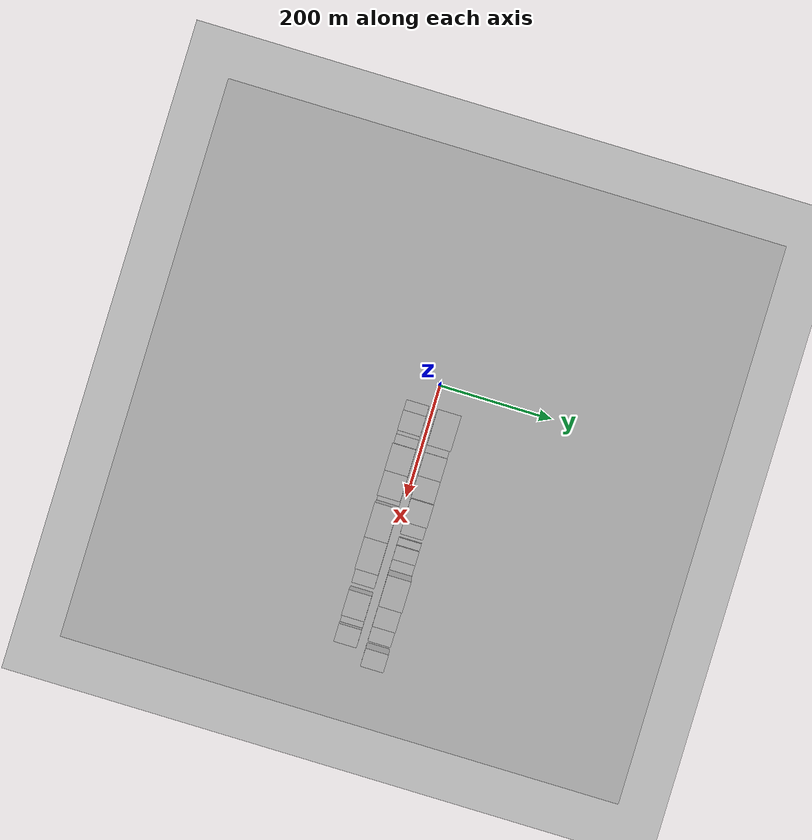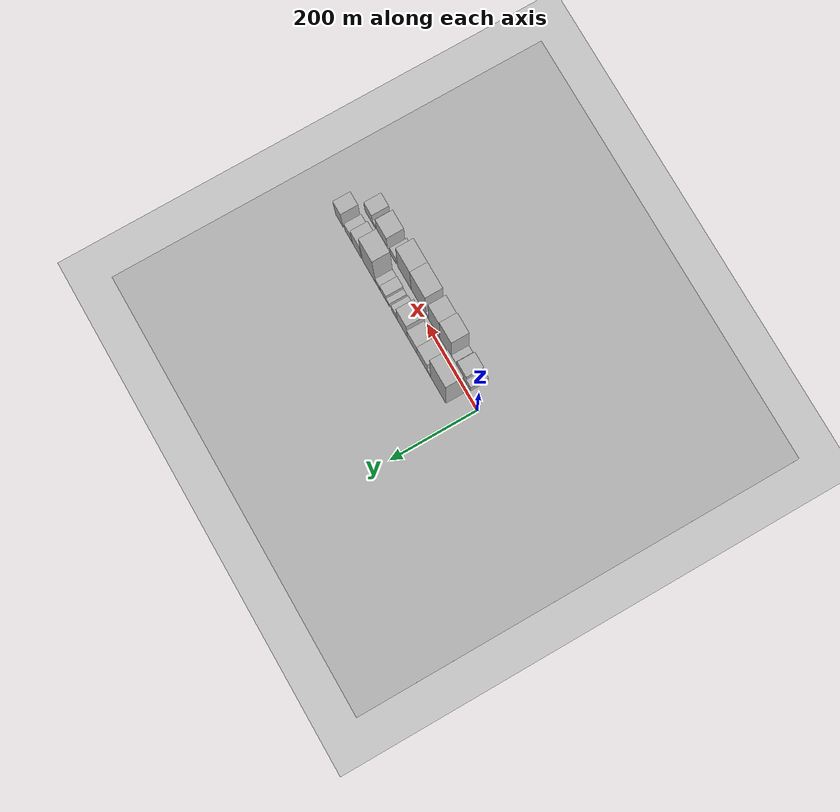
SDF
<?xml version="1.0" encoding="utf-8"?>

<sdf version="1.6">

   <world name="default">

      <gui fullscreen="0">

         <camera name="user_camera">

            <pose>-15 0 4.57585 0 0 0</pose>

            <view_controller>orbit</view_controller>

         </camera>

      </gui>

      <scene>

         <sky>

           <clouds>

             <speed>12</speed>

           </clouds>

         </sky>

         <ambient>0.4 0.4 0.4 1</ambient>

         <background>0.7 0.7 0.7 1</background>

         <shadows>1</shadows>

      </scene>

      <gravity>0 0 -9.8066</gravity>

      <magnetic_field>6e-06 2.3e-05 -4.2e-05</magnetic_field>

      <physics default="0" name="default_physics" type="ode">

         <ode>

            <solver>

               <type>quick</type>

               <iters>10</iters>

               <sor>1.0</sor>

               <use_dynamic_moi_rescaling>0</use_dynamic_moi_rescaling>

            </solver>

            <constraints>

               <cfm>0</cfm>

               <erp>0.2</erp>

               <contact_max_correcting_vel>100</contact_max_correcting_vel>

               <contact_surface_layer>0.001</contact_surface_layer>

            </constraints>

         </ode>

         <max_step_size>0.004</max_step_size>

         <real_time_factor>1</real_time_factor>

         <real_time_update_rate>250</real_time_update_rate>

      </physics>

      <light name="sun" type="directional">

         <cast_shadows>1</cast_shadows>

         <pose>0 0 10 0 0 0</pose>

         <diffuse>0.8 0.8 0.8 1</diffuse>

         <specular>0.2 0.2 0.2 1</specular>

         <attenuation>

            <range>1000</range>

            <constant>0.9</constant>

            <linear>0.01</linear>

            <quadratic>0.001</quadratic>

         </attenuation>

         <direction>-0.5 0.1 -0.9</direction>

      </light>

      <include>

         <name>ground_plane_1</name>

         <uri>model://HANNAS_ground_plane</uri>

         <pose>0 0 0  0 0 0</pose>

      </include>

      <include>

         <name>ground_plane_2</name>

         <uri>model://HANNAS_ground_plane</uri>

         <pose>100 0 0  0 0 0</pose>

      </include>

      <model name="building_1">

         <static>1</static>

         <pose frame="">73.2922 27.5000 0 0.000000 0.000000 1.570796</pose>

         <link name="link">

            <pose frame="">0 0 91.50 0 0 0</pose>

            <collision name="collision">

               <geometry>

                  <box>

                     <size>40.0000 60.5845 183.0000</size>

                  </box>

               </geometry>

               <max_contacts>10</max_contacts>

               <surface>

                  <contact>

                     <ode/>

                  </contact>

                  <bounce/>

                  <friction>

                     <torsional>

                        <ode/>

                     </torsional>

                     <ode/>

                  </friction>

               </surface>

            </collision>

            <visual name="visual">

               <cast_shadows>0</cast_shadows>

               <geometry>

                  <box>

                     <size>40.0000 60.5845 183.0000</size>

                  </box>

               </geometry>

               <material>

                  <script>

                     <uri>model://HANNAS_wall/materials/scripts</uri>

                     <uri>model://HANNAS_wall/materials/textures</uri>

                     <name>vrc/HANNAS_wall</name>

                  </script>

               </material>

            </visual>

            <self_collide>0</self_collide>

            <enable_wind>0</enable_wind>

            <kinematic>0</kinematic>

         </link>

      </model>

      <model name="building_2">

         <static>1</static>

         <pose frame="">110.1360 27.5000 0 0.000000 0.000000 1.570796</pose>

         <link name="link">

            <pose frame="">0 0 13.50 0 0 0</pose>

            <collision name="collision">

               <geometry>

                  <box>

                     <size>40.0000 13.1030 27.0000</size>

                  </box>

               </geometry>

               <max_contacts>10</max_contacts>

               <surface>

                  <contact>

                     <ode/>

                  </contact>

                  <bounce/>

                  <friction>

                     <torsional>

                        <ode/>

                     </torsional>

                     <ode/>

                  </friction>

               </surface>

            </collision>

            <visual name="visual">

               <cast_shadows>0</cast_shadows>

               <geometry>

                  <box>

                     <size>40.0000 13.1030 27.0000</size>

                  </box>

               </geometry>

               <material>

                  <script>

                     <uri>model://HANNAS_wall/materials/scripts</uri>

                     <uri>model://HANNAS_wall/materials/textures</uri>

                     <name>vrc/HANNAS_wall</name>

                  </script>

               </material>

            </visual>

            <self_collide>0</self_collide>

            <enable_wind>0</enable_wind>

            <kinematic>0</kinematic>

         </link>

      </model>

      <model name="building_3">

         <static>1</static>

         <pose frame="">137.1209 27.5000 0 0.000000 0.000000 1.570796</pose>

         <link name="link">

            <pose frame="">0 0 34.50 0 0 0</pose>

            <collision name="collision">

               <geometry>

                  <box>

                     <size>40.0000 40.8669 69.0000</size>

                  </box>

               </geometry>

               <max_contacts>10</max_contacts>

               <surface>

                  <contact>

                     <ode/>

                  </contact>

                  <bounce/>

                  <friction>

                     <torsional>

                        <ode/>

                     </torsional>

                     <ode/>

                  </friction>

               </surface>

            </collision>

            <visual name="visual">

               <cast_shadows>0</cast_shadows>

               <geometry>

                  <box>

                     <size>40.0000 40.8669 69.0000</size>

                  </box>

               </geometry>

               <material>

                  <script>

                     <uri>model://HANNAS_wall/materials/scripts</uri>

                     <uri>model://HANNAS_wall/materials/textures</uri>

                     <name>vrc/HANNAS_wall</name>

                  </script>

               </material>

            </visual>

            <self_collide>0</self_collide>

            <enable_wind>0</enable_wind>

            <kinematic>0</kinematic>

         </link>

      </model>

      <model name="building_4">

         <static>1</static>

         <pose frame="">177.1733 27.5000 0 0.000000 0.000000 1.570796</pose>

         <link name="link">

            <pose frame="">0 0 33.00 0 0 0</pose>

            <collision name="collision">

               <geometry>

                  <box>

                     <size>40.0000 39.2379 66.0000</size>

                  </box>

               </geometry>

               <max_contacts>10</max_contacts>

               <surface>

                  <contact>

                     <ode/>

                  </contact>

                  <bounce/>

                  <friction>

                     <torsional>

                        <ode/>

                     </torsional>

                     <ode/>

                  </friction>

               </surface>

            </collision>

            <visual name="visual">

               <cast_shadows>0</cast_shadows>

               <geometry>

                  <box>

                     <size>40.0000 39.2379 66.0000</size>

                  </box>

               </geometry>

               <material>

                  <script>

                     <uri>model://HANNAS_wall/materials/scripts</uri>

                     <uri>model://HANNAS_wall/materials/textures</uri>

                     <name>vrc/HANNAS_wall</name>

                  </script>

               </material>

            </visual>

            <self_collide>0</self_collide>

            <enable_wind>0</enable_wind>

            <kinematic>0</kinematic>

         </link>

      </model>

      <model name="building_5">

         <static>1</static>

         <pose frame="">217.0349 27.5000 0 0.000000 0.000000 1.570796</pose>

         <link name="link">

            <pose frame="">0 0 51.00 0 0 0</pose>

            <collision name="collision">

               <geometry>

                  <box>

                     <size>40.0000 40.4852 102.0000</size>

                  </box>

               </geometry>

               <max_contacts>10</max_contacts>

               <surface>

                  <contact>

                     <ode/>

                  </contact>

                  <bounce/>

                  <friction>

                     <torsional>

                        <ode/>

                     </torsional>

                     <ode/>

                  </friction>

               </surface>

            </collision>

            <visual name="visual">

               <cast_shadows>0</cast_shadows>

               <geometry>

                  <box>

                     <size>40.0000 40.4852 102.0000</size>

                  </box>

               </geometry>

               <material>

                  <script>

                     <uri>model://HANNAS_wall/materials/scripts</uri>

                     <uri>model://HANNAS_wall/materials/textures</uri>

                     <name>vrc/HANNAS_wall</name>

                  </script>

               </material>

            </visual>

            <self_collide>0</self_collide>

            <enable_wind>0</enable_wind>

            <kinematic>0</kinematic>

         </link>

      </model>

      <model name="building_6">

         <static>1</static>

         <pose frame="">249.2175 27.5000 0 0.000000 0.000000 1.570796</pose>

         <link name="link">

            <pose frame="">0 0 21.00 0 0 0</pose>

            <collision name="collision">

               <geometry>

                  <box>

                     <size>40.0000 23.8801 42.0000</size>

                  </box>

               </geometry>

               <max_contacts>10</max_contacts>

               <surface>

                  <contact>

                     <ode/>

                  </contact>

                  <bounce/>

                  <friction>

                     <torsional>

                        <ode/>

                     </torsional>

                     <ode/>

                  </friction>

               </surface>

            </collision>

            <visual name="visual">

               <cast_shadows>0</cast_shadows>

               <geometry>

                  <box>

                     <size>40.0000 23.8801 42.0000</size>

                  </box>

               </geometry>

               <material>

                  <script>

                     <uri>model://HANNAS_wall/materials/scripts</uri>

                     <uri>model://HANNAS_wall/materials/textures</uri>

                     <name>vrc/HANNAS_wall</name>

                  </script>

               </material>

            </visual>

            <self_collide>0</self_collide>

            <enable_wind>0</enable_wind>

            <kinematic>0</kinematic>

         </link>

      </model>

      <model name="building_7">

         <static>1</static>

         <pose frame="">274.6905 27.5000 0 0.000000 0.000000 1.570796</pose>

         <link name="link">

            <pose frame="">0 0 13.50 0 0 0</pose>

            <collision name="collision">

               <geometry>

                  <box>

                     <size>40.0000 13.0658 27.0000</size>

                  </box>

               </geometry>

               <max_contacts>10</max_contacts>

               <surface>

                  <contact>

                     <ode/>

                  </contact>

                  <bounce/>

                  <friction>

                     <torsional>

                        <ode/>

                     </torsional>

                     <ode/>

                  </friction>

               </surface>

            </collision>

            <visual name="visual">

               <cast_shadows>0</cast_shadows>

               <geometry>

                  <box>

                     <size>40.0000 13.0658 27.0000</size>

                  </box>

               </geometry>

               <material>

                  <script>

                     <uri>model://HANNAS_wall/materials/scripts</uri>

                     <uri>model://HANNAS_wall/materials/textures</uri>

                     <name>vrc/HANNAS_wall</name>

                  </script>

               </material>

            </visual>

            <self_collide>0</self_collide>

            <enable_wind>0</enable_wind>

            <kinematic>0</kinematic>

         </link>

      </model>

      <model name="building_8">

         <static>1</static>

         <pose frame="">293.6197 27.5000 0 0.000000 0.000000 1.570796</pose>

         <link name="link">

            <pose frame="">0 0 22.50 0 0 0</pose>

            <collision name="collision">

               <geometry>

                  <box>

                     <size>40.0000 24.7926 45.0000</size>

                  </box>

               </geometry>

               <max_contacts>10</max_contacts>

               <surface>

                  <contact>

                     <ode/>

                  </contact>

                  <bounce/>

                  <friction>

                     <torsional>

                        <ode/>

                     </torsional>

                     <ode/>

                  </friction>

               </surface>

            </collision>

            <visual name="visual">

               <cast_shadows>0</cast_shadows>

               <geometry>

                  <box>

                     <size>40.0000 24.7926 45.0000</size>

                  </box>

               </geometry>

               <material>

                  <script>

                     <uri>model://HANNAS_wall/materials/scripts</uri>

                     <uri>model://HANNAS_wall/materials/textures</uri>

                     <name>vrc/HANNAS_wall</name>

                  </script>

               </material>

            </visual>

            <self_collide>0</self_collide>

            <enable_wind>0</enable_wind>

            <kinematic>0</kinematic>

         </link>

      </model>

      <model name="building_9">

         <static>1</static>

         <pose frame="">315.5268 27.5000 0 0.000000 0.000000 1.570796</pose>

         <link name="link">

            <pose frame="">0 0 18.00 0 0 0</pose>

            <collision name="collision">

               <geometry>

                  <box>

                     <size>40.0000 19.0216 36.0000</size>

                  </box>

               </geometry>

               <max_contacts>10</max_contacts>

               <surface>

                  <contact>

                     <ode/>

                  </contact>

                  <bounce/>

                  <friction>

                     <torsional>

                        <ode/>

                     </torsional>

                     <ode/>

                  </friction>

               </surface>

            </collision>

            <visual name="visual">

               <cast_shadows>0</cast_shadows>

               <geometry>

                  <box>

                     <size>40.0000 19.0216 36.0000</size>

                  </box>

               </geometry>

               <material>

                  <script>

                     <uri>model://HANNAS_wall/materials/scripts</uri>

                     <uri>model://HANNAS_wall/materials/textures</uri>

                     <name>vrc/HANNAS_wall</name>

                  </script>

               </material>

            </visual>

            <self_collide>0</self_collide>

            <enable_wind>0</enable_wind>

            <kinematic>0</kinematic>

         </link>

      </model>

      <model name="building_10">

         <static>1</static>

         <pose frame="">351.4854 27.5000 0 0.000000 0.000000 1.570796</pose>

         <link name="link">

            <pose frame="">0 0 87.00 0 0 0</pose>

            <collision name="collision">

               <geometry>

                  <box>

                     <size>40.0000 52.8956 174.0000</size>

                  </box>

               </geometry>

               <max_contacts>10</max_contacts>

               <surface>

                  <contact>

                     <ode/>

                  </contact>

                  <bounce/>

                  <friction>

                     <torsional>

                        <ode/>

                     </torsional>

                     <ode/>

                  </friction>

               </surface>

            </collision>

            <visual name="visual">

               <cast_shadows>0</cast_shadows>

               <geometry>

                  <box>

                     <size>40.0000 52.8956 174.0000</size>

                  </box>

               </geometry>

               <material>

                  <script>

                     <uri>model://HANNAS_wall/materials/scripts</uri>

                     <uri>model://HANNAS_wall/materials/textures</uri>

                     <name>vrc/HANNAS_wall</name>

                  </script>

               </material>

            </visual>

            <self_collide>0</self_collide>

            <enable_wind>0</enable_wind>

            <kinematic>0</kinematic>

         </link>

      </model>

      <model name="building_11">

         <static>1</static>

         <pose frame="">401.3773 27.5000 0 0.000000 0.000000 1.570796</pose>

         <link name="link">

            <pose frame="">0 0 48.00 0 0 0</pose>

            <collision name="collision">

               <geometry>

                  <box>

                     <size>40.0000 36.8881 96.0000</size>

                  </box>

               </geometry>

               <max_contacts>10</max_contacts>

               <surface>

                  <contact>

                     <ode/>

                  </contact>

                  <bounce/>

                  <friction>

                     <torsional>

                        <ode/>

                     </torsional>

                     <ode/>

                  </friction>

               </surface>

            </collision>

            <visual name="visual">

               <cast_shadows>0</cast_shadows>

               <geometry>

                  <box>

                     <size>40.0000 36.8881 96.0000</size>

                  </box>

               </geometry>

               <material>

                  <script>

                     <uri>model://HANNAS_wall/materials/scripts</uri>

                     <uri>model://HANNAS_wall/materials/textures</uri>

                     <name>vrc/HANNAS_wall</name>

                  </script>

               </material>

            </visual>

            <self_collide>0</self_collide>

            <enable_wind>0</enable_wind>

            <kinematic>0</kinematic>

         </link>

      </model>

      <model name="building_12">

         <static>1</static>

         <pose frame="">434.8382 27.5000 0 0.000000 0.000000 1.570796</pose>

         <link name="link">

            <pose frame="">0 0 27.00 0 0 0</pose>

            <collision name="collision">

               <geometry>

                  <box>

                     <size>40.0000 30.0337 54.0000</size>

                  </box>

               </geometry>

               <max_contacts>10</max_contacts>

               <surface>

                  <contact>

                     <ode/>

                  </contact>

                  <bounce/>

                  <friction>

                     <torsional>

                        <ode/>

                     </torsional>

                     <ode/>

                  </friction>

               </surface>

            </collision>

            <visual name="visual">

               <cast_shadows>0</cast_shadows>

               <geometry>

                  <box>

                     <size>40.0000 30.0337 54.0000</size>

                  </box>

               </geometry>

               <material>

                  <script>

                     <uri>model://HANNAS_wall/materials/scripts</uri>

                     <uri>model://HANNAS_wall/materials/textures</uri>

                     <name>vrc/HANNAS_wall</name>

                  </script>

               </material>

            </visual>

            <self_collide>0</self_collide>

            <enable_wind>0</enable_wind>

            <kinematic>0</kinematic>

         </link>

      </model>

      <model name="building_13">

         <static>1</static>

         <pose frame="">473.5929 27.5000 0 0.000000 0.000000 1.570796</pose>

         <link name="link">

            <pose frame="">0 0 48.00 0 0 0</pose>

            <collision name="collision">

               <geometry>

                  <box>

                     <size>40.0000 31.4758 96.0000</size>

                  </box>

               </geometry>

               <max_contacts>10</max_contacts>

               <surface>

                  <contact>

                     <ode/>

                  </contact>

                  <bounce/>

                  <friction>

                     <torsional>

                        <ode/>

                     </torsional>

                     <ode/>

                  </friction>

               </surface>

            </collision>

            <visual name="visual">

               <cast_shadows>0</cast_shadows>

               <geometry>

                  <box>

                     <size>40.0000 31.4758 96.0000</size>

                  </box>

               </geometry>

               <material>

                  <script>

                     <uri>model://HANNAS_wall/materials/scripts</uri>

                     <uri>model://HANNAS_wall/materials/textures</uri>

                     <name>vrc/HANNAS_wall</name>

                  </script>

               </material>

            </visual>

            <self_collide>0</self_collide>

            <enable_wind>0</enable_wind>

            <kinematic>0</kinematic>

         </link>

      </model>

      <model name="building_14">

         <static>1</static>

         <pose frame="">49.3180 -27.5000 0 0.000000 0.000000 1.570796</pose>

         <link name="link">

            <pose frame="">0 0 18.00 0 0 0</pose>

            <collision name="collision">

               <geometry>

                  <box>

                     <size>40.0000 18.6360 36.0000</size>

                  </box>

               </geometry>

               <max_contacts>10</max_contacts>

               <surface>

                  <contact>

                     <ode/>

                  </contact>

                  <bounce/>

                  <friction>

                     <torsional>

                        <ode/>

                     </torsional>

                     <ode/>

                  </friction>

               </surface>

            </collision>

            <visual name="visual">

               <cast_shadows>0</cast_shadows>

               <geometry>

                  <box>

                     <size>40.0000 18.6360 36.0000</size>

                  </box>

               </geometry>

               <material>

                  <script>

                     <uri>model://HANNAS_wall/materials/scripts</uri>

                     <uri>model://HANNAS_wall/materials/textures</uri>

                     <name>vrc/HANNAS_wall</name>

                  </script>

               </material>

            </visual>

            <self_collide>0</self_collide>

            <enable_wind>0</enable_wind>

            <kinematic>0</kinematic>

         </link>

      </model>

      <model name="building_15">

         <static>1</static>

         <pose frame="">76.4230 -27.5000 0 0.000000 0.000000 1.570796</pose>

         <link name="link">

            <pose frame="">0 0 31.50 0 0 0</pose>

            <collision name="collision">

               <geometry>

                  <box>

                     <size>40.0000 35.5740 63.0000</size>

                  </box>

               </geometry>

               <max_contacts>10</max_contacts>

               <surface>

                  <contact>

                     <ode/>

                  </contact>

                  <bounce/>

                  <friction>

                     <torsional>

                        <ode/>

                     </torsional>

                     <ode/>

                  </friction>

               </surface>

            </collision>

            <visual name="visual">

               <cast_shadows>0</cast_shadows>

               <geometry>

                  <box>

                     <size>40.0000 35.5740 63.0000</size>

                  </box>

               </geometry>

               <material>

                  <script>

                     <uri>model://HANNAS_wall/materials/scripts</uri>

                     <uri>model://HANNAS_wall/materials/textures</uri>

                     <name>vrc/HANNAS_wall</name>

                  </script>

               </material>

            </visual>

            <self_collide>0</self_collide>

            <enable_wind>0</enable_wind>

            <kinematic>0</kinematic>

         </link>

      </model>

      <model name="building_16">

         <static>1</static>

         <pose frame="">97.2860 -27.5000 0 0.000000 0.000000 1.570796</pose>

         <link name="link">

            <pose frame="">0 0 7.50 0 0 0</pose>

            <collision name="collision">

               <geometry>

                  <box>

                     <size>40.0000 6.1520 15.0000</size>

                  </box>

               </geometry>

               <max_contacts>10</max_contacts>

               <surface>

                  <contact>

                     <ode/>

                  </contact>

                  <bounce/>

                  <friction>

                     <torsional>

                        <ode/>

                     </torsional>

                     <ode/>

                  </friction>

               </surface>

            </collision>

            <visual name="visual">

               <cast_shadows>0</cast_shadows>

               <geometry>

                  <box>

                     <size>40.0000 6.1520 15.0000</size>

                  </box>

               </geometry>

               <material>

                  <script>

                     <uri>model://HANNAS_wall/materials/scripts</uri>

                     <uri>model://HANNAS_wall/materials/textures</uri>

                     <name>vrc/HANNAS_wall</name>

                  </script>

               </material>

            </visual>

            <self_collide>0</self_collide>

            <enable_wind>0</enable_wind>

            <kinematic>0</kinematic>

         </link>

      </model>

      <model name="building_17">

         <static>1</static>

         <pose frame="">108.6470 -27.5000 0 0.000000 0.000000 1.570796</pose>

         <link name="link">

            <pose frame="">0 0 15.00 0 0 0</pose>

            <collision name="collision">

               <geometry>

                  <box>

                     <size>40.0000 16.5701 30.0000</size>

                  </box>

               </geometry>

               <max_contacts>10</max_contacts>

               <surface>

                  <contact>

                     <ode/>

                  </contact>

                  <bounce/>

                  <friction>

                     <torsional>

                        <ode/>

                     </torsional>

                     <ode/>

                  </friction>

               </surface>

            </collision>

            <visual name="visual">

               <cast_shadows>0</cast_shadows>

               <geometry>

                  <box>

                     <size>40.0000 16.5701 30.0000</size>

                  </box>

               </geometry>

               <material>

                  <script>

                     <uri>model://HANNAS_wall/materials/scripts</uri>

                     <uri>model://HANNAS_wall/materials/textures</uri>

                     <name>vrc/HANNAS_wall</name>

                  </script>

               </material>

            </visual>

            <self_collide>0</self_collide>

            <enable_wind>0</enable_wind>

            <kinematic>0</kinematic>

         </link>

      </model>

      <model name="building_18">

         <static>1</static>

         <pose frame="">140.0905 -27.5000 0 0.000000 0.000000 1.570796</pose>

         <link name="link">

            <pose frame="">0 0 75.00 0 0 0</pose>

            <collision name="collision">

               <geometry>

                  <box>

                     <size>40.0000 46.3169 150.0000</size>

                  </box>

               </geometry>

               <max_contacts>10</max_contacts>

               <surface>

                  <contact>

                     <ode/>

                  </contact>

                  <bounce/>

                  <friction>

                     <torsional>

                        <ode/>

                     </torsional>

                     <ode/>

                  </friction>

               </surface>

            </collision>

            <visual name="visual">

               <cast_shadows>0</cast_shadows>

               <geometry>

                  <box>

                     <size>40.0000 46.3169 150.0000</size>

                  </box>

               </geometry>

               <material>

                  <script>

                     <uri>model://HANNAS_wall/materials/scripts</uri>

                     <uri>model://HANNAS_wall/materials/textures</uri>

                     <name>vrc/HANNAS_wall</name>

                  </script>

               </material>

            </visual>

            <self_collide>0</self_collide>

            <enable_wind>0</enable_wind>

            <kinematic>0</kinematic>

         </link>

      </model>

      <model name="building_19">

         <static>1</static>

         <pose frame="">185.0102 -27.5000 0 0.000000 0.000000 1.570796</pose>

         <link name="link">

            <pose frame="">0 0 67.50 0 0 0</pose>

            <collision name="collision">

               <geometry>

                  <box>

                     <size>40.0000 43.5224 135.0000</size>

                  </box>

               </geometry>

               <max_contacts>10</max_contacts>

               <surface>

                  <contact>

                     <ode/>

                  </contact>

                  <bounce/>

                  <friction>

                     <torsional>

                        <ode/>

                     </torsional>

                     <ode/>

                  </friction>

               </surface>

            </collision>

            <visual name="visual">

               <cast_shadows>0</cast_shadows>

               <geometry>

                  <box>

                     <size>40.0000 43.5224 135.0000</size>

                  </box>

               </geometry>

               <material>

                  <script>

                     <uri>model://HANNAS_wall/materials/scripts</uri>

                     <uri>model://HANNAS_wall/materials/textures</uri>

                     <name>vrc/HANNAS_wall</name>

                  </script>

               </material>

            </visual>

            <self_collide>0</self_collide>

            <enable_wind>0</enable_wind>

            <kinematic>0</kinematic>

         </link>

      </model>

      <model name="building_20">

         <static>1</static>

         <pose frame="">212.4921 -27.5000 0 0.000000 0.000000 1.570796</pose>

         <link name="link">

            <pose frame="">0 0 12.00 0 0 0</pose>

            <collision name="collision">

               <geometry>

                  <box>

                     <size>40.0000 11.4414 24.0000</size>

                  </box>

               </geometry>

               <max_contacts>10</max_contacts>

               <surface>

                  <contact>

                     <ode/>

                  </contact>

                  <bounce/>

                  <friction>

                     <torsional>

                        <ode/>

                     </torsional>

                     <ode/>

                  </friction>

               </surface>

            </collision>

            <visual name="visual">

               <cast_shadows>0</cast_shadows>

               <geometry>

                  <box>

                     <size>40.0000 11.4414 24.0000</size>

                  </box>

               </geometry>

               <material>

                  <script>

                     <uri>model://HANNAS_wall/materials/scripts</uri>

                     <uri>model://HANNAS_wall/materials/textures</uri>

                     <name>vrc/HANNAS_wall</name>

                  </script>

               </material>

            </visual>

            <self_collide>0</self_collide>

            <enable_wind>0</enable_wind>

            <kinematic>0</kinematic>

         </link>

      </model>

      <model name="building_21">

         <static>1</static>

         <pose frame="">247.9169 -27.5000 0 0.000000 0.000000 1.570796</pose>

         <link name="link">

            <pose frame="">0 0 75.00 0 0 0</pose>

            <collision name="collision">

               <geometry>

                  <box>

                     <size>40.0000 59.4081 150.0000</size>

                  </box>

               </geometry>

               <max_contacts>10</max_contacts>

               <surface>

                  <contact>

                     <ode/>

                  </contact>

                  <bounce/>

                  <friction>

                     <torsional>

                        <ode/>

                     </torsional>

                     <ode/>

                  </friction>

               </surface>

            </collision>

            <visual name="visual">

               <cast_shadows>0</cast_shadows>

               <geometry>

                  <box>

                     <size>40.0000 59.4081 150.0000</size>

                  </box>

               </geometry>

               <material>

                  <script>

                     <uri>model://HANNAS_wall/materials/scripts</uri>

                     <uri>model://HANNAS_wall/materials/textures</uri>

                     <name>vrc/HANNAS_wall</name>

                  </script>

               </material>

            </visual>

            <self_collide>0</self_collide>

            <enable_wind>0</enable_wind>

            <kinematic>0</kinematic>

         </link>

      </model>

      <model name="building_22">

         <static>1</static>

         <pose frame="">304.8760 -27.5000 0 0.000000 0.000000 1.570796</pose>

         <link name="link">

            <pose frame="">0 0 75.00 0 0 0</pose>

            <collision name="collision">

               <geometry>

                  <box>

                     <size>40.0000 54.5101 150.0000</size>

                  </box>

               </geometry>

               <max_contacts>10</max_contacts>

               <surface>

                  <contact>

                     <ode/>

                  </contact>

                  <bounce/>

                  <friction>

                     <torsional>

                        <ode/>

                     </torsional>

                     <ode/>

                  </friction>

               </surface>

            </collision>

            <visual name="visual">

               <cast_shadows>0</cast_shadows>

               <geometry>

                  <box>

                     <size>40.0000 54.5101 150.0000</size>

                  </box>

               </geometry>

               <material>

                  <script>

                     <uri>model://HANNAS_wall/materials/scripts</uri>

                     <uri>model://HANNAS_wall/materials/textures</uri>

                     <name>vrc/HANNAS_wall</name>

                  </script>

               </material>

            </visual>

            <self_collide>0</self_collide>

            <enable_wind>0</enable_wind>

            <kinematic>0</kinematic>

         </link>

      </model>

      <model name="building_23">

         <static>1</static>

         <pose frame="">350.5802 -27.5000 0 0.000000 0.000000 1.570796</pose>

         <link name="link">

            <pose frame="">0 0 24.00 0 0 0</pose>

            <collision name="collision">

               <geometry>

                  <box>

                     <size>40.0000 24.8983 48.0000</size>

                  </box>

               </geometry>

               <max_contacts>10</max_contacts>

               <surface>

                  <contact>

                     <ode/>

                  </contact>

                  <bounce/>

                  <friction>

                     <torsional>

                        <ode/>

                     </torsional>

                     <ode/>

                  </friction>

               </surface>

            </collision>

            <visual name="visual">

               <cast_shadows>0</cast_shadows>

               <geometry>

                  <box>

                     <size>40.0000 24.8983 48.0000</size>

                  </box>

               </geometry>

               <material>

                  <script>

                     <uri>model://HANNAS_wall/materials/scripts</uri>

                     <uri>model://HANNAS_wall/materials/textures</uri>

                     <name>vrc/HANNAS_wall</name>

                  </script>

               </material>

            </visual>

            <self_collide>0</self_collide>

            <enable_wind>0</enable_wind>

            <kinematic>0</kinematic>

         </link>

      </model>

      <model name="building_24">

         <static>1</static>

         <pose frame="">395.3778 -27.5000 0 0.000000 0.000000 1.570796</pose>

         <link name="link">

            <pose frame="">0 0 43.50 0 0 0</pose>

            <collision name="collision">

               <geometry>

                  <box>

                     <size>40.0000 44.6970 87.0000</size>

                  </box>

               </geometry>

               <max_contacts>10</max_contacts>

               <surface>

                  <contact>

                     <ode/>

                  </contact>

                  <bounce/>

                  <friction>

                     <torsional>

                        <ode/>

                     </torsional>

                     <ode/>

                  </friction>

               </surface>

            </collision>

            <visual name="visual">

               <cast_shadows>0</cast_shadows>

               <geometry>

                  <box>

                     <size>40.0000 44.6970 87.0000</size>

                  </box>

               </geometry>

               <material>

                  <script>

                     <uri>model://HANNAS_wall/materials/scripts</uri>

                     <uri>model://HANNAS_wall/materials/textures</uri>

                     <name>vrc/HANNAS_wall</name>

                  </script>

               </material>

            </visual>

            <self_collide>0</self_collide>

            <enable_wind>0</enable_wind>

            <kinematic>0</kinematic>

         </link>

      </model>

      <model name="building_25">

         <static>1</static>

         <pose frame="">428.0193 -27.5000 0 0.000000 0.000000 1.570796</pose>

         <link name="link">

            <pose frame="">0 0 13.50 0 0 0</pose>

            <collision name="collision">

               <geometry>

                  <box>

                     <size>40.0000 12.5859 27.0000</size>

                  </box>

               </geometry>

               <max_contacts>10</max_contacts>

               <surface>

                  <contact>

                     <ode/>

                  </contact>

                  <bounce/>

                  <friction>

                     <torsional>

                        <ode/>

                     </torsional>

                     <ode/>

                  </friction>

               </surface>

            </collision>

            <visual name="visual">

               <cast_shadows>0</cast_shadows>

               <geometry>

                  <box>

                     <size>40.0000 12.5859 27.0000</size>

                  </box>

               </geometry>

               <material>

                  <script>

                     <uri>model://HANNAS_wall/materials/scripts</uri>

                     <uri>model://HANNAS_wall/materials/textures</uri>

                     <name>vrc/HANNAS_wall</name>

                  </script>

               </material>

            </visual>

            <self_collide>0</self_collide>

            <enable_wind>0</enable_wind>

            <kinematic>0</kinematic>

         </link>

      </model>

      <model name="building_26">

         <static>1</static>

         <pose frame="">450.1193 -27.5000 0 0.000000 0.000000 1.570796</pose>

         <link name="link">

            <pose frame="">0 0 31.50 0 0 0</pose>

            <collision name="collision">

               <geometry>

                  <box>

                     <size>40.0000 31.6143 63.0000</size>

                  </box>

               </geometry>

               <max_contacts>10</max_contacts>

               <surface>

                  <contact>

                     <ode/>

                  </contact>

                  <bounce/>

                  <friction>

                     <torsional>

                        <ode/>

                     </torsional>

                     <ode/>

                  </friction>

               </surface>

            </collision>

            <visual name="visual">

               <cast_shadows>0</cast_shadows>

               <geometry>

                  <box>

                     <size>40.0000 31.6143 63.0000</size>

                  </box>

               </geometry>

               <material>

                  <script>

                     <uri>model://HANNAS_wall/materials/scripts</uri>

                     <uri>model://HANNAS_wall/materials/textures</uri>

                     <name>vrc/HANNAS_wall</name>

                  </script>

               </material>

            </visual>

            <self_collide>0</self_collide>

            <enable_wind>0</enable_wind>

            <kinematic>0</kinematic>

         </link>

      </model>

   </world>

</sdf>

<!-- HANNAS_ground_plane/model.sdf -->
<sdf version="1.4">
<model name="HANNAS_ground_plane">
  <static>true</static>
    <link name="link">
      <collision name="collision">
        <geometry>
          <plane>
            <normal>0 0 1</normal>
            <size>1000 1000</size>
          </plane>
        </geometry>
        <surface>
          <friction>
            <ode>
              <mu>100</mu>
              <mu2>50</mu2>
            </ode>
          </friction>
        </surface>
      </collision>
      <visual name="visual">
        <cast_shadows>false</cast_shadows>
        <geometry>
          <plane>
            <normal>0 0 1</normal>
            <size>1000 1000</size>
          </plane>
        </geometry>
        <material>
          <script>
            <uri>model://HANNAS_ground_plane/materials/scripts/HANNAS_ground_plane.material</uri>
	    <uri>model://HANNAS_ground_plane/materials/textures</uri>
            <name>HANNASGroundPlane/Image</name>
          </script>
        </material>
      </visual>
    </link>
  </model>
</sdf>
